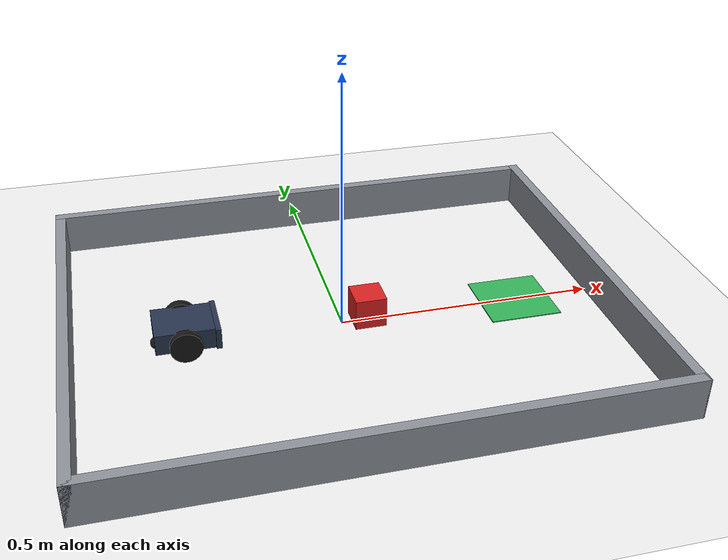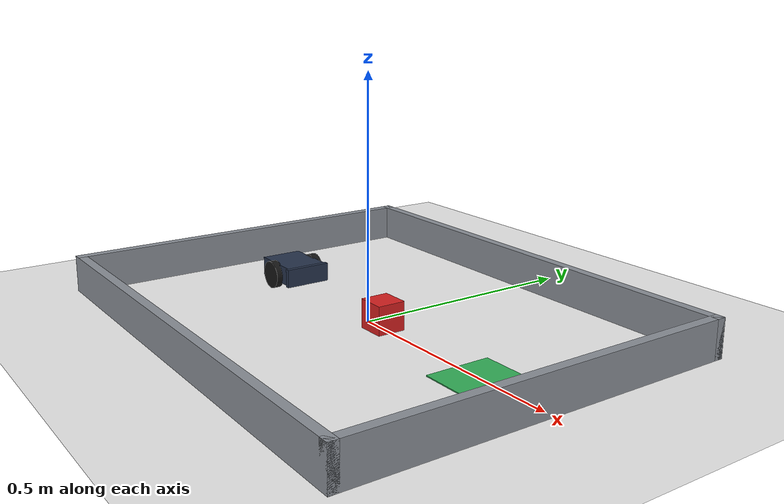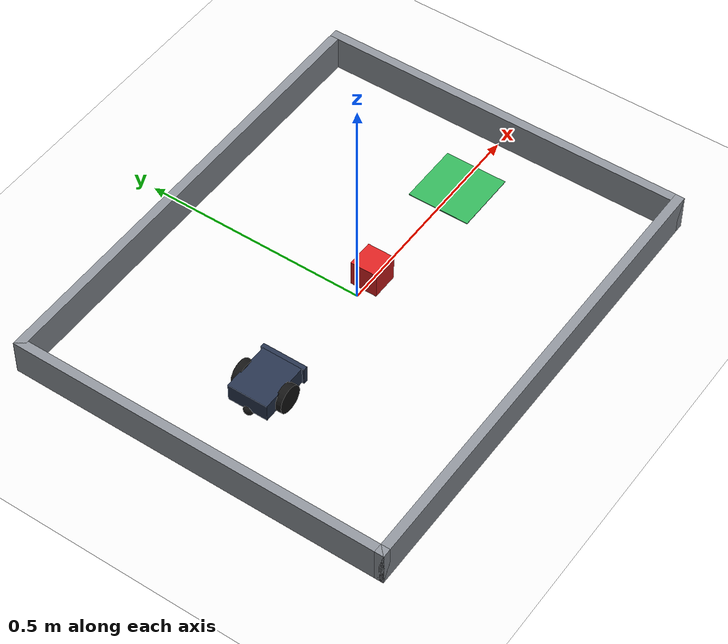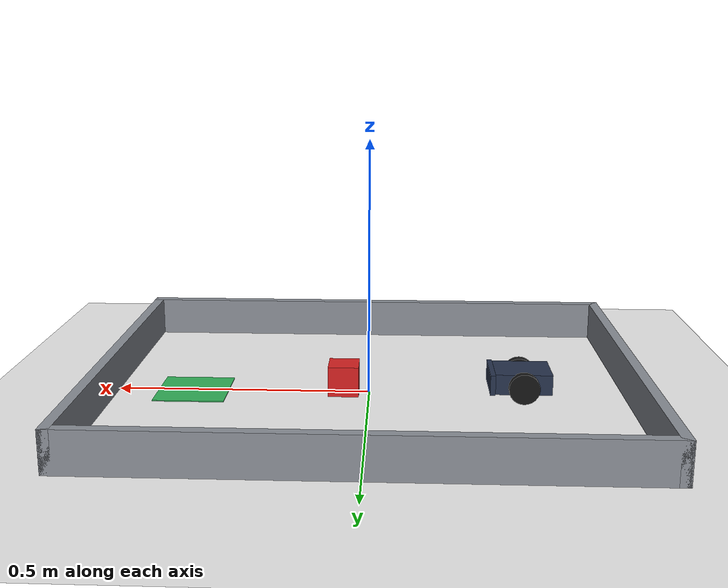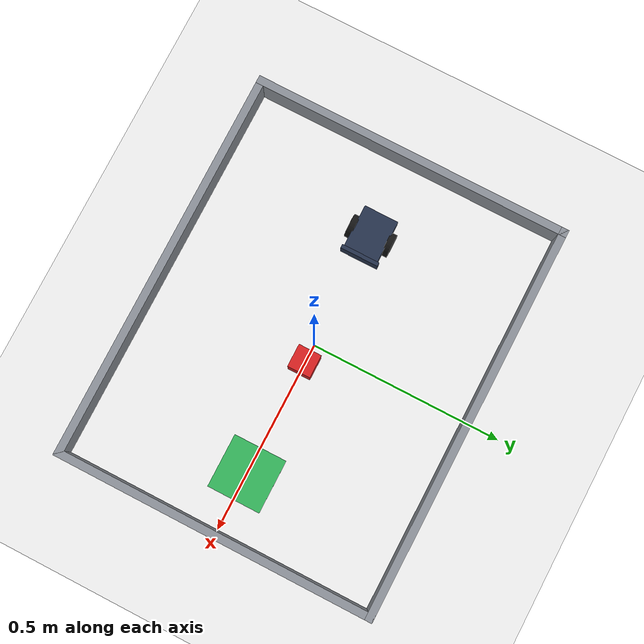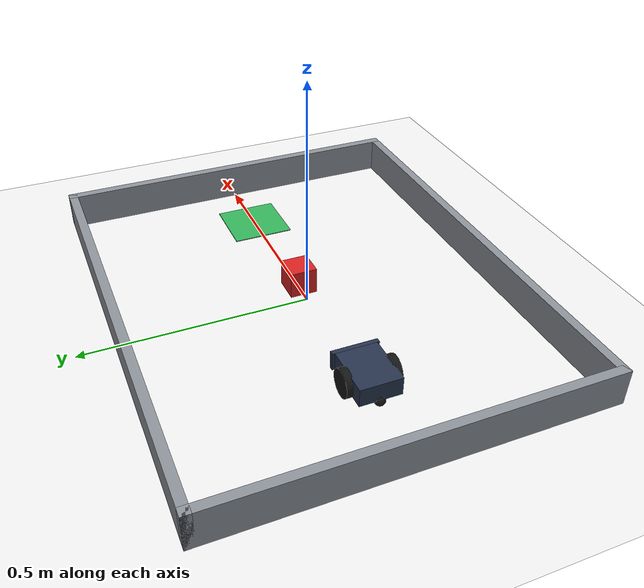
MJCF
<mujoco model="mbot_push">
  <compiler angle="degree" autolimits="true"/>
  <option timestep="0.002" integrator="implicitfast"/>

  <visual>
    <headlight ambient="0.55 0.55 0.55" diffuse="0.5 0.5 0.5" specular="0.1 0.1 0.1"/>
    <!-- Must be at least the offscreen render size requested in Python. -->
    <global offwidth="640" offheight="640"/>
  </visual>

  <asset>
    <material name="white" rgba="0.94 0.94 0.94 1"/>
    <material name="robot" rgba="0.15 0.20 0.30 1"/>
    <material name="wheel" rgba="0.08 0.08 0.08 1"/>
    <material name="block" rgba="0.85 0.13 0.13 1"/>
    <material name="goal" rgba="0.20 0.70 0.35 1"/>
    <material name="wall" rgba="0.55 0.57 0.60 1"/>
  </asset>

  <worldbody>
    <light pos="0 0 2.0" dir="0 0 -1" diffuse="0.7 0.7 0.7"/>
    <geom name="floor" type="plane" size="1.0 1.0 0.05" material="white"/>

    <!-- Arena walls: a 1.0 x 0.8 m pen, standing in for a floor mat's border or
         a table rim. Without them the robot simply drives out of frame, and
         every episode would need a manual bound. -->
    <geom name="wall_px" type="box" size="0.01 0.42 0.04" pos=" 0.51 0 0.04" material="wall"/>
    <geom name="wall_nx" type="box" size="0.01 0.42 0.04" pos="-0.51 0 0.04" material="wall"/>
    <geom name="wall_py" type="box" size="0.52 0.01 0.04" pos="0  0.41 0.04" material="wall"/>
    <geom name="wall_ny" type="box" size="0.52 0.01 0.04" pos="0 -0.41 0.04" material="wall"/>

    <!-- Painted target. No collision: it is a marking, not an obstacle. -->
    <geom name="goal" type="box" size="0.07 0.07 0.001" pos="0.35 0 0.001"
          material="goal" contype="0" conaffinity="0"/>

    <!-- Static look-at camera framing the whole pen. A tracking camera re-runs
         its smoothing filter on every update_scene(), which makes renders
         depend on call history. -->
    <camera name="overhead" pos="0 0 0.95" xyaxes="1 0 0 0 1 0" fovy="60"/>

    <body name="chassis" pos="-0.30 0 0.035">
      <freejoint name="chassis_free"/>
      <geom name="chassis" type="box" size="0.055 0.045 0.020" material="robot" mass="0.45"/>
      <!-- Flat front plate: a bare chassis corner tends to climb the block. -->
      <geom name="pusher" type="box" size="0.005 0.050 0.020" pos="0.060 0 0"
            material="robot" mass="0.05"/>
      <body name="wheel_left" pos="0 0.050 -0.005">
        <joint name="wheel_left" type="hinge" axis="0 1 0"/>
        <geom type="cylinder" size="0.030 0.008" euler="90 0 0" material="wheel"
              mass="0.05" friction="1.5 0.01 0.001"/>
      </body>
      <body name="wheel_right" pos="0 -0.050 -0.005">
        <joint name="wheel_right" type="hinge" axis="0 1 0"/>
        <geom type="cylinder" size="0.030 0.008" euler="90 0 0" material="wheel"
              mass="0.05" friction="1.5 0.01 0.001"/>
      </body>
      <!-- Rear skid. Low friction so it slides instead of steering the robot. -->
      <geom name="caster" type="sphere" size="0.012" pos="-0.050 0 -0.023"
            material="wheel" mass="0.02" friction="0.02 0.005 0.0001"/>
    </body>

    <body name="block" pos="0.05 0 0.030">
      <freejoint name="block_free"/>
      <geom name="block" type="box" size="0.030 0.030 0.030" material="block"
            mass="0.08" friction="0.4 0.005 0.0001"/>
    </body>
  </worldbody>

  <actuator>
    <velocity name="wheel_left" joint="wheel_left" kv="0.08"
              ctrlrange="-20 20" forcerange="-0.6 0.6"/>
    <velocity name="wheel_right" joint="wheel_right" kv="0.08"
              ctrlrange="-20 20" forcerange="-0.6 0.6"/>
  </actuator>
</mujoco>
